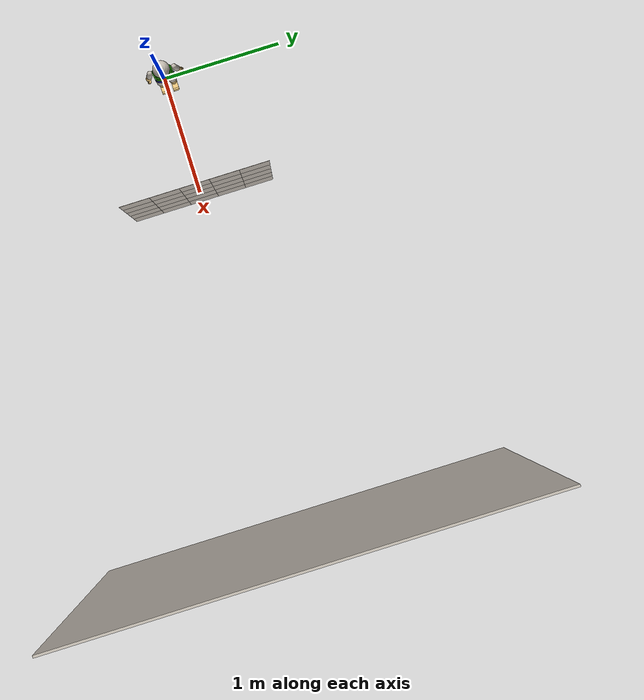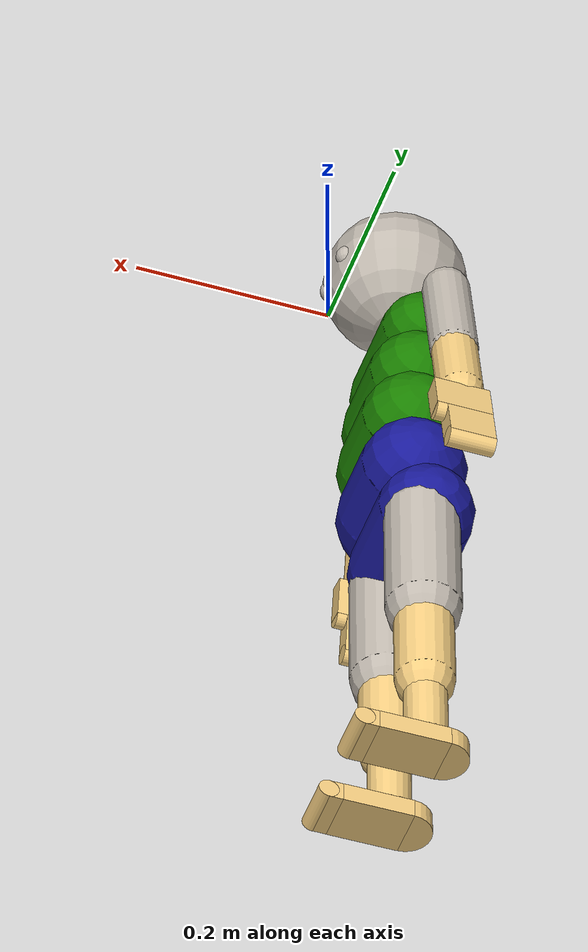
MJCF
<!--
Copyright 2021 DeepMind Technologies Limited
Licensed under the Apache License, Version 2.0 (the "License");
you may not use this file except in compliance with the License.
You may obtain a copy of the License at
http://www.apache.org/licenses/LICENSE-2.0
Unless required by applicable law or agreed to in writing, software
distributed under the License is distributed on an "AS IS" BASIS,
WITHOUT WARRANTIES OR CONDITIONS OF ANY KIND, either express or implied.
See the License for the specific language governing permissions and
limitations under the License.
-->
<mujoco model="MIMo">

    <compiler inertiafromgeom="true" angle="degree"/>

    <option gravity="0 0 0" timestep="0.005" iterations="50" tolerance="1e-10" solver="Newton" jacobian="dense" cone="elliptic" impratio="1.0"/>

    <size nconmax="1000" njmax="5000" nstack="10000000" nuser_cam="3"/>

    <visual>
        <map force="0.1" zfar="30" znear="0.005"/>
        <rgba haze="0.15 0.25 0.35 1"/>
        <quality shadowsize="0"/>
        <global offwidth="800" offheight="800"/>
    </visual>

    <!-- Import everything except the kinematic tree -->
	<include file="saccade_vergence_meta.xml"></include>

    <asset>
        <texture type="skybox" builtin="gradient" rgb1="0.3 0.5 0.7" rgb2="0 0 0" width="512" height="512"/>

        <!--background-->
        <texture name="background" type="2d" file="../../../data/background.png"/>
        <material name="background" texture="background"/>

        <!-- textures-->
        <texture name="texture0" type="cube" filefront="../../../data/texture0.png" rgb1="0 0 0"/>
        <texture name="texture1" type="cube" filefront="../../../data/texture1.png" rgb1="0 0 0"/>
        <texture name="texture2" type="cube" filefront="../../../data/texture2.png" rgb1="0 0 0"/>
        <texture name="texture3" type="cube" filefront="../../../data/texture3.png" rgb1="0 0 0"/>
        <texture name="texture4" type="cube" filefront="../../../data/texture4.png" rgb1="0 0 0"/>
        <texture name="texture5" type="cube" filefront="../../../data/texture5.png" rgb1="0 0 0"/>
        <texture name="texture6" type="cube" filefront="../../../data/texture6.png" rgb1="0 0 0"/>
        <texture name="texture7" type="cube" filefront="../../../data/texture7.png" rgb1="0 0 0"/>
        <texture name="texture8" type="cube" filefront="../../../data/texture8.png" rgb1="0 0 0"/>
        <texture name="texture9" type="cube" filefront="../../../data/texture9.png" rgb1="0 0 0"/>
        <texture name="texture10" type="cube" filefront="../../../data/texture10.png" rgb1="0 0 0"/>
        <texture name="texture11" type="cube" filefront="../../../data/texture11.png" rgb1="0 0 0"/>
        <texture name="texture12" type="cube" filefront="../../../data/texture12.png" rgb1="0 0 0"/>
        <texture name="texture13" type="cube" filefront="../../../data/texture13.png" rgb1="0 0 0"/>
        <texture name="texture14" type="cube" filefront="../../../data/texture14.png" rgb1="0 0 0"/>
        <texture name="texture15" type="cube" filefront="../../../data/texture15.png" rgb1="0 0 0"/>
        <texture name="texture16" type="cube" filefront="../../../data/texture16.png" rgb1="0 0 0"/>
        <texture name="texture17" type="cube" filefront="../../../data/texture17.png" rgb1="0 0 0"/>
        <texture name="texture18" type="cube" filefront="../../../data/texture18.png" rgb1="0 0 0"/>
        <texture name="texture19" type="cube" filefront="../../../data/texture19.png" rgb1="0 0 0"/>
        <texture name="texture20" type="cube" filefront="../../../data/texture20.png" rgb1="0 0 0"/>
        <texture name="texture21" type="cube" filefront="../../../data/texture21.png" rgb1="0 0 0"/>
        <texture name="texture22" type="cube" filefront="../../../data/texture22.png" rgb1="0 0 0"/>
        <texture name="texture23" type="cube" filefront="../../../data/texture23.png" rgb1="0 0 0"/>
        <texture name="texture24" type="cube" filefront="../../../data/texture24.png" rgb1="0 0 0"/>
        <texture name="texture25" type="cube" filefront="../../../data/texture25.png" rgb1="0 0 0"/>
        <texture name="texture26" type="cube" filefront="../../../data/texture26.png" rgb1="0 0 0"/>
        <texture name="texture27" type="cube" filefront="../../../data/texture27.png" rgb1="0 0 0"/>
        <texture name="texture28" type="cube" filefront="../../../data/texture28.png" rgb1="0 0 0"/>
        <texture name="texture29" type="cube" filefront="../../../data/texture29.png" rgb1="0 0 0"/>
        <texture name="texture30" type="cube" filefront="../../../data/texture30.png" rgb1="0 0 0"/>
        <texture name="texture31" type="cube" filefront="../../../data/texture31.png" rgb1="0 0 0"/>
        <texture name="texture32" type="cube" filefront="../../../data/texture32.png" rgb1="0 0 0"/>
        <texture name="texture33" type="cube" filefront="../../../data/texture33.png" rgb1="0 0 0"/>
        <texture name="texture34" type="cube" filefront="../../../data/texture34.png" rgb1="0 0 0"/>
        <texture name="texture35" type="cube" filefront="../../../data/texture35.png" rgb1="0 0 0"/>
        <texture name="texture36" type="cube" filefront="../../../data/texture36.png" rgb1="0 0 0"/>
        <texture name="texture37" type="cube" filefront="../../../data/texture37.png" rgb1="0 0 0"/>
        <texture name="texture38" type="cube" filefront="../../../data/texture38.png" rgb1="0 0 0"/>
        <texture name="texture39" type="cube" filefront="../../../data/texture39.png" rgb1="0 0 0"/>
        <texture name="texture40" type="cube" filefront="../../../data/texture40.png" rgb1="0 0 0"/>
        <texture name="texture41" type="cube" filefront="../../../data/texture41.png" rgb1="0 0 0"/>
        <texture name="texture42" type="cube" filefront="../../../data/texture42.png" rgb1="0 0 0"/>
        <texture name="texture43" type="cube" filefront="../../../data/texture43.png" rgb1="0 0 0"/>
        <texture name="texture44" type="cube" filefront="../../../data/texture44.png" rgb1="0 0 0"/>
        <texture name="texture45" type="cube" filefront="../../../data/texture45.png" rgb1="0 0 0"/>
        <texture name="texture46" type="cube" filefront="../../../data/texture46.png" rgb1="0 0 0"/>
        <texture name="texture47" type="cube" filefront="../../../data/texture47.png" rgb1="0 0 0"/>
        <texture name="texture48" type="cube" filefront="../../../data/texture48.png" rgb1="0 0 0"/>
        <texture name="texture49" type="cube" filefront="../../../data/texture49.png" rgb1="0 0 0"/>
        <texture name="texture50" type="cube" filefront="../../../data/texture50.png" rgb1="0 0 0"/>
        <texture name="texture51" type="cube" filefront="../../../data/texture51.png" rgb1="0 0 0"/>
        <texture name="texture52" type="cube" filefront="../../../data/texture52.png" rgb1="0 0 0"/>
        <texture name="texture53" type="cube" filefront="../../../data/texture53.png" rgb1="0 0 0"/>
        <texture name="texture54" type="cube" filefront="../../../data/texture54.png" rgb1="0 0 0"/>
        <texture name="texture55" type="cube" filefront="../../../data/texture55.png" rgb1="0 0 0"/>
        <texture name="texture56" type="cube" filefront="../../../data/texture56.png" rgb1="0 0 0"/>
        <texture name="texture57" type="cube" filefront="../../../data/texture57.png" rgb1="0 0 0"/>
        <texture name="texture58" type="cube" filefront="../../../data/texture58.png" rgb1="0 0 0"/>
        <texture name="texture59" type="cube" filefront="../../../data/texture59.png" rgb1="0 0 0"/>
        <texture name="texture60" type="cube" filefront="../../../data/texture60.png" rgb1="0 0 0"/>
        <texture name="texture61" type="cube" filefront="../../../data/texture61.png" rgb1="0 0 0"/>
        <texture name="texture62" type="cube" filefront="../../../data/texture62.png" rgb1="0 0 0"/>
        <texture name="texture63" type="cube" filefront="../../../data/texture63.png" rgb1="0 0 0"/>
        <texture name="texture64" type="cube" filefront="../../../data/texture64.png" rgb1="0 0 0"/>
        <texture name="texture65" type="cube" filefront="../../../data/texture65.png" rgb1="0 0 0"/>
        <texture name="texture66" type="cube" filefront="../../../data/texture66.png" rgb1="0 0 0"/>
        <texture name="texture67" type="cube" filefront="../../../data/texture67.png" rgb1="0 0 0"/>
        <texture name="texture68" type="cube" filefront="../../../data/texture68.png" rgb1="0 0 0"/>
        <texture name="texture69" type="cube" filefront="../../../data/texture69.png" rgb1="0 0 0"/>
        <texture name="texture70" type="cube" filefront="../../../data/texture70.png" rgb1="0 0 0"/>
        <texture name="texture71" type="cube" filefront="../../../data/texture71.png" rgb1="0 0 0"/>
        <texture name="texture72" type="cube" filefront="../../../data/texture72.png" rgb1="0 0 0"/>
        <texture name="texture73" type="cube" filefront="../../../data/texture73.png" rgb1="0 0 0"/>
        <texture name="texture74" type="cube" filefront="../../../data/texture74.png" rgb1="0 0 0"/>
        <texture name="texture75" type="cube" filefront="../../../data/texture75.png" rgb1="0 0 0"/>
        <texture name="texture76" type="cube" filefront="../../../data/texture76.png" rgb1="0 0 0"/>
        <texture name="texture77" type="cube" filefront="../../../data/texture77.png" rgb1="0 0 0"/>
        <texture name="texture78" type="cube" filefront="../../../data/texture78.png" rgb1="0 0 0"/>
        <texture name="texture79" type="cube" filefront="../../../data/texture79.png" rgb1="0 0 0"/>
        <texture name="texture80" type="cube" filefront="../../../data/texture80.png" rgb1="0 0 0"/>
        <texture name="texture81" type="cube" filefront="../../../data/texture81.png" rgb1="0 0 0"/>
        <texture name="texture82" type="cube" filefront="../../../data/texture82.png" rgb1="0 0 0"/>
        <texture name="texture83" type="cube" filefront="../../../data/texture83.png" rgb1="0 0 0"/>
        <texture name="texture84" type="cube" filefront="../../../data/texture84.png" rgb1="0 0 0"/>
        <texture name="texture85" type="cube" filefront="../../../data/texture85.png" rgb1="0 0 0"/>
        <texture name="texture86" type="cube" filefront="../../../data/texture86.png" rgb1="0 0 0"/>
        <texture name="texture87" type="cube" filefront="../../../data/texture87.png" rgb1="0 0 0"/>
        <texture name="texture88" type="cube" filefront="../../../data/texture88.png" rgb1="0 0 0"/>
        <texture name="texture89" type="cube" filefront="../../../data/texture89.png" rgb1="0 0 0"/>
        <texture name="texture90" type="cube" filefront="../../../data/texture90.png" rgb1="0 0 0"/>
        <texture name="texture91" type="cube" filefront="../../../data/texture91.png" rgb1="0 0 0"/>
        <texture name="texture92" type="cube" filefront="../../../data/texture92.png" rgb1="0 0 0"/>
        <texture name="texture93" type="cube" filefront="../../../data/texture93.png" rgb1="0 0 0"/>
        <texture name="texture94" type="cube" filefront="../../../data/texture94.png" rgb1="0 0 0"/>
        <texture name="texture95" type="cube" filefront="../../../data/texture95.png" rgb1="0 0 0"/>
        <texture name="texture96" type="cube" filefront="../../../data/texture96.png" rgb1="0 0 0"/>
        <texture name="texture97" type="cube" filefront="../../../data/texture97.png" rgb1="0 0 0"/>
        <texture name="texture98" type="cube" filefront="../../../data/texture98.png" rgb1="0 0 0"/>
        <texture name="texture99" type="cube" filefront="../../../data/texture99.png" rgb1="0 0 0"/>
        <texture name="texture100" type="cube" filefront="../../../data/texture100.png" rgb1="0 0 0"/>
        <texture name="texture101" type="cube" filefront="../../../data/texture101.png" rgb1="0 0 0"/>
        <texture name="texture102" type="cube" filefront="../../../data/texture102.png" rgb1="0 0 0"/>
        <texture name="texture103" type="cube" filefront="../../../data/texture103.png" rgb1="0 0 0"/>
        <texture name="texture104" type="cube" filefront="../../../data/texture104.png" rgb1="0 0 0"/>
        <texture name="texture105" type="cube" filefront="../../../data/texture105.png" rgb1="0 0 0"/>
        <texture name="texture106" type="cube" filefront="../../../data/texture106.png" rgb1="0 0 0"/>
        <texture name="texture107" type="cube" filefront="../../../data/texture107.png" rgb1="0 0 0"/>
        <texture name="texture108" type="cube" filefront="../../../data/texture108.png" rgb1="0 0 0"/>
        <texture name="texture109" type="cube" filefront="../../../data/texture109.png" rgb1="0 0 0"/>
        <texture name="texture110" type="cube" filefront="../../../data/texture110.png" rgb1="0 0 0"/>
        <texture name="texture111" type="cube" filefront="../../../data/texture111.png" rgb1="0 0 0"/>
        <texture name="texture112" type="cube" filefront="../../../data/texture112.png" rgb1="0 0 0"/>
        <texture name="texture113" type="cube" filefront="../../../data/texture113.png" rgb1="0 0 0"/>
        <texture name="texture114" type="cube" filefront="../../../data/texture114.png" rgb1="0 0 0"/>
        <texture name="texture115" type="cube" filefront="../../../data/texture115.png" rgb1="0 0 0"/>
        <texture name="texture116" type="cube" filefront="../../../data/texture116.png" rgb1="0 0 0"/>
        <texture name="texture117" type="cube" filefront="../../../data/texture117.png" rgb1="0 0 0"/>
        <texture name="texture118" type="cube" filefront="../../../data/texture118.png" rgb1="0 0 0"/>
        <texture name="texture119" type="cube" filefront="../../../data/texture119.png" rgb1="0 0 0"/>
        <texture name="texture120" type="cube" filefront="../../../data/texture120.png" rgb1="0 0 0"/>
        <texture name="texture121" type="cube" filefront="../../../data/texture121.png" rgb1="0 0 0"/>
        <texture name="texture122" type="cube" filefront="../../../data/texture122.png" rgb1="0 0 0"/>
        <texture name="texture123" type="cube" filefront="../../../data/texture123.png" rgb1="0 0 0"/>
        <texture name="texture124" type="cube" filefront="../../../data/texture124.png" rgb1="0 0 0"/>
        <texture name="texture125" type="cube" filefront="../../../data/texture125.png" rgb1="0 0 0"/>
        <texture name="texture126" type="cube" filefront="../../../data/texture126.png" rgb1="0 0 0"/>
        <texture name="texture127" type="cube" filefront="../../../data/texture127.png" rgb1="0 0 0"/>
        <texture name="texture128" type="cube" filefront="../../../data/texture128.png" rgb1="0 0 0"/>
        <texture name="texture129" type="cube" filefront="../../../data/texture129.png" rgb1="0 0 0"/>
        <texture name="texture130" type="cube" filefront="../../../data/texture130.png" rgb1="0 0 0"/>
        <texture name="texture131" type="cube" filefront="../../../data/texture131.png" rgb1="0 0 0"/>
        <texture name="texture132" type="cube" filefront="../../../data/texture132.png" rgb1="0 0 0"/>
        <texture name="texture133" type="cube" filefront="../../../data/texture133.png" rgb1="0 0 0"/>
        <texture name="texture134" type="cube" filefront="../../../data/texture134.png" rgb1="0 0 0"/>
        <texture name="texture135" type="cube" filefront="../../../data/texture135.png" rgb1="0 0 0"/>
        <texture name="texture136" type="cube" filefront="../../../data/texture136.png" rgb1="0 0 0"/>
        <texture name="texture137" type="cube" filefront="../../../data/texture137.png" rgb1="0 0 0"/>
        <texture name="texture138" type="cube" filefront="../../../data/texture138.png" rgb1="0 0 0"/>
        <texture name="texture139" type="cube" filefront="../../../data/texture139.png" rgb1="0 0 0"/>
        <texture name="texture140" type="cube" filefront="../../../data/texture140.png" rgb1="0 0 0"/>
        <texture name="texture141" type="cube" filefront="../../../data/texture141.png" rgb1="0 0 0"/>
        <texture name="texture142" type="cube" filefront="../../../data/texture142.png" rgb1="0 0 0"/>
        <texture name="texture143" type="cube" filefront="../../../data/texture143.png" rgb1="0 0 0"/>
        <texture name="texture144" type="cube" filefront="../../../data/texture144.png" rgb1="0 0 0"/>
        <texture name="texture145" type="cube" filefront="../../../data/texture145.png" rgb1="0 0 0"/>
        <texture name="texture146" type="cube" filefront="../../../data/texture146.png" rgb1="0 0 0"/>
        <texture name="texture147" type="cube" filefront="../../../data/texture147.png" rgb1="0 0 0"/>
        <texture name="texture148" type="cube" filefront="../../../data/texture148.png" rgb1="0 0 0"/>
        <texture name="texture149" type="cube" filefront="../../../data/texture149.png" rgb1="0 0 0"/>
        <texture name="texture150" type="cube" filefront="../../../data/texture150.png" rgb1="0 0 0"/>
        <texture name="texture151" type="cube" filefront="../../../data/texture151.png" rgb1="0 0 0"/>
        <texture name="texture152" type="cube" filefront="../../../data/texture152.png" rgb1="0 0 0"/>
        <texture name="texture153" type="cube" filefront="../../../data/texture153.png" rgb1="0 0 0"/>
        <texture name="texture154" type="cube" filefront="../../../data/texture154.png" rgb1="0 0 0"/>
        <texture name="texture155" type="cube" filefront="../../../data/texture155.png" rgb1="0 0 0"/>
        <texture name="texture156" type="cube" filefront="../../../data/texture156.png" rgb1="0 0 0"/>
        <texture name="texture157" type="cube" filefront="../../../data/texture157.png" rgb1="0 0 0"/>
        <texture name="texture158" type="cube" filefront="../../../data/texture158.png" rgb1="0 0 0"/>
        <texture name="texture159" type="cube" filefront="../../../data/texture159.png" rgb1="0 0 0"/>
        <texture name="texture160" type="cube" filefront="../../../data/texture160.png" rgb1="0 0 0"/>
        <texture name="texture161" type="cube" filefront="../../../data/texture161.png" rgb1="0 0 0"/>
        <texture name="texture162" type="cube" filefront="../../../data/texture162.png" rgb1="0 0 0"/>
        <texture name="texture163" type="cube" filefront="../../../data/texture163.png" rgb1="0 0 0"/>
        <texture name="texture164" type="cube" filefront="../../../data/texture164.png" rgb1="0 0 0"/>
        <texture name="texture165" type="cube" filefront="../../../data/texture165.png" rgb1="0 0 0"/>
        <texture name="texture166" type="cube" filefront="../../../data/texture166.png" rgb1="0 0 0"/>
        <texture name="texture167" type="cube" filefront="../../../data/texture167.png" rgb1="0 0 0"/>
        <texture name="texture168" type="cube" filefront="../../../data/texture168.png" rgb1="0 0 0"/>
        <texture name="texture169" type="cube" filefront="../../../data/texture169.png" rgb1="0 0 0"/>
        <texture name="texture170" type="cube" filefront="../../../data/texture170.png" rgb1="0 0 0"/>
        <texture name="texture171" type="cube" filefront="../../../data/texture171.png" rgb1="0 0 0"/>
        <texture name="texture172" type="cube" filefront="../../../data/texture172.png" rgb1="0 0 0"/>
        <texture name="texture173" type="cube" filefront="../../../data/texture173.png" rgb1="0 0 0"/>
        <texture name="texture174" type="cube" filefront="../../../data/texture174.png" rgb1="0 0 0"/>
        <texture name="texture175" type="cube" filefront="../../../data/texture175.png" rgb1="0 0 0"/>
        <texture name="texture176" type="cube" filefront="../../../data/texture176.png" rgb1="0 0 0"/>
        <texture name="texture177" type="cube" filefront="../../../data/texture177.png" rgb1="0 0 0"/>
        <texture name="texture178" type="cube" filefront="../../../data/texture178.png" rgb1="0 0 0"/>
        <texture name="texture179" type="cube" filefront="../../../data/texture179.png" rgb1="0 0 0"/>
        <texture name="texture180" type="cube" filefront="../../../data/texture180.png" rgb1="0 0 0"/>
        <texture name="texture181" type="cube" filefront="../../../data/texture181.png" rgb1="0 0 0"/>
        <texture name="texture182" type="cube" filefront="../../../data/texture182.png" rgb1="0 0 0"/>
        <texture name="texture183" type="cube" filefront="../../../data/texture183.png" rgb1="0 0 0"/>
        <texture name="texture184" type="cube" filefront="../../../data/texture184.png" rgb1="0 0 0"/>
        <texture name="texture185" type="cube" filefront="../../../data/texture185.png" rgb1="0 0 0"/>
        <texture name="texture186" type="cube" filefront="../../../data/texture186.png" rgb1="0 0 0"/>
        <texture name="texture187" type="cube" filefront="../../../data/texture187.png" rgb1="0 0 0"/>
        <texture name="texture188" type="cube" filefront="../../../data/texture188.png" rgb1="0 0 0"/>
        <texture name="texture189" type="cube" filefront="../../../data/texture189.png" rgb1="0 0 0"/>
        <texture name="texture190" type="cube" filefront="../../../data/texture190.png" rgb1="0 0 0"/>
        <texture name="texture191" type="cube" filefront="../../../data/texture191.png" rgb1="0 0 0"/>
        <texture name="texture192" type="cube" filefront="../../../data/texture192.png" rgb1="0 0 0"/>
        <texture name="texture193" type="cube" filefront="../../../data/texture193.png" rgb1="0 0 0"/>
        <texture name="texture194" type="cube" filefront="../../../data/texture194.png" rgb1="0 0 0"/>
        <texture name="texture195" type="cube" filefront="../../../data/texture195.png" rgb1="0 0 0"/>
        <texture name="texture196" type="cube" filefront="../../../data/texture196.png" rgb1="0 0 0"/>
        <texture name="texture197" type="cube" filefront="../../../data/texture197.png" rgb1="0 0 0"/>
        <texture name="texture198" type="cube" filefront="../../../data/texture198.png" rgb1="0 0 0"/>
        <texture name="texture199" type="cube" filefront="../../../data/texture199.png" rgb1="0 0 0"/>
        <texture name="texture200" type="cube" filefront="../../../data/texture200.png" rgb1="0 0 0"/>
        <texture name="texture201" type="cube" filefront="../../../data/texture201.png" rgb1="0 0 0"/>
        <texture name="texture202" type="cube" filefront="../../../data/texture202.png" rgb1="0 0 0"/>
        <texture name="texture203" type="cube" filefront="../../../data/texture203.png" rgb1="0 0 0"/>
        <texture name="texture204" type="cube" filefront="../../../data/texture204.png" rgb1="0 0 0"/>
        <texture name="texture205" type="cube" filefront="../../../data/texture205.png" rgb1="0 0 0"/>
        <texture name="texture206" type="cube" filefront="../../../data/texture206.png" rgb1="0 0 0"/>
        <texture name="texture207" type="cube" filefront="../../../data/texture207.png" rgb1="0 0 0"/>
        <texture name="texture208" type="cube" filefront="../../../data/texture208.png" rgb1="0 0 0"/>
        <texture name="texture209" type="cube" filefront="../../../data/texture209.png" rgb1="0 0 0"/>
        <texture name="texture210" type="cube" filefront="../../../data/texture210.png" rgb1="0 0 0"/>
        <texture name="texture211" type="cube" filefront="../../../data/texture211.png" rgb1="0 0 0"/>
        <texture name="texture212" type="cube" filefront="../../../data/texture212.png" rgb1="0 0 0"/>
        <texture name="texture213" type="cube" filefront="../../../data/texture213.png" rgb1="0 0 0"/>
        <texture name="texture214" type="cube" filefront="../../../data/texture214.png" rgb1="0 0 0"/>
        <texture name="texture215" type="cube" filefront="../../../data/texture215.png" rgb1="0 0 0"/>
        <texture name="texture216" type="cube" filefront="../../../data/texture216.png" rgb1="0 0 0"/>
        <texture name="texture217" type="cube" filefront="../../../data/texture217.png" rgb1="0 0 0"/>
        <texture name="texture218" type="cube" filefront="../../../data/texture218.png" rgb1="0 0 0"/>
        <texture name="texture219" type="cube" filefront="../../../data/texture219.png" rgb1="0 0 0"/>
        <texture name="texture220" type="cube" filefront="../../../data/texture220.png" rgb1="0 0 0"/>
        <texture name="texture221" type="cube" filefront="../../../data/texture221.png" rgb1="0 0 0"/>
        <texture name="texture222" type="cube" filefront="../../../data/texture222.png" rgb1="0 0 0"/>
        <texture name="texture223" type="cube" filefront="../../../data/texture223.png" rgb1="0 0 0"/>
        <texture name="texture224" type="cube" filefront="../../../data/texture224.png" rgb1="0 0 0"/>
        <texture name="texture225" type="cube" filefront="../../../data/texture225.png" rgb1="0 0 0"/>
        <texture name="texture226" type="cube" filefront="../../../data/texture226.png" rgb1="0 0 0"/>
        <texture name="texture227" type="cube" filefront="../../../data/texture227.png" rgb1="0 0 0"/>
        <texture name="texture228" type="cube" filefront="../../../data/texture228.png" rgb1="0 0 0"/>
        <texture name="texture229" type="cube" filefront="../../../data/texture229.png" rgb1="0 0 0"/>
        <texture name="texture230" type="cube" filefront="../../../data/texture230.png" rgb1="0 0 0"/>
        <texture name="texture231" type="cube" filefront="../../../data/texture231.png" rgb1="0 0 0"/>
        <texture name="texture232" type="cube" filefront="../../../data/texture232.png" rgb1="0 0 0"/>
        <texture name="texture233" type="cube" filefront="../../../data/texture233.png" rgb1="0 0 0"/>
        <texture name="texture234" type="cube" filefront="../../../data/texture234.png" rgb1="0 0 0"/>
        <texture name="texture235" type="cube" filefront="../../../data/texture235.png" rgb1="0 0 0"/>
        <texture name="texture236" type="cube" filefront="../../../data/texture236.png" rgb1="0 0 0"/>
        <texture name="texture237" type="cube" filefront="../../../data/texture237.png" rgb1="0 0 0"/>
        <texture name="texture238" type="cube" filefront="../../../data/texture238.png" rgb1="0 0 0"/>
        <texture name="texture239" type="cube" filefront="../../../data/texture239.png" rgb1="0 0 0"/>
        <texture name="texture240" type="cube" filefront="../../../data/texture240.png" rgb1="0 0 0"/>
        <texture name="texture241" type="cube" filefront="../../../data/texture241.png" rgb1="0 0 0"/>
        <texture name="texture242" type="cube" filefront="../../../data/texture242.png" rgb1="0 0 0"/>
        <texture name="texture243" type="cube" filefront="../../../data/texture243.png" rgb1="0 0 0"/>
        <texture name="texture244" type="cube" filefront="../../../data/texture244.png" rgb1="0 0 0"/>
        <texture name="texture245" type="cube" filefront="../../../data/texture245.png" rgb1="0 0 0"/>
        <texture name="texture246" type="cube" filefront="../../../data/texture246.png" rgb1="0 0 0"/>
        <texture name="texture247" type="cube" filefront="../../../data/texture247.png" rgb1="0 0 0"/>
        <texture name="texture248" type="cube" filefront="../../../data/texture248.png" rgb1="0 0 0"/>
        <texture name="texture249" type="cube" filefront="../../../data/texture249.png" rgb1="0 0 0"/>
        <texture name="texture250" type="cube" filefront="../../../data/texture250.png" rgb1="0 0 0"/>
        <texture name="texture251" type="cube" filefront="../../../data/texture251.png" rgb1="0 0 0"/>
        <texture name="texture252" type="cube" filefront="../../../data/texture252.png" rgb1="0 0 0"/>
        <texture name="texture253" type="cube" filefront="../../../data/texture253.png" rgb1="0 0 0"/>
        <texture name="texture254" type="cube" filefront="../../../data/texture254.png" rgb1="0 0 0"/>
        <texture name="texture255" type="cube" filefront="../../../data/texture255.png" rgb1="0 0 0"/>
        <texture name="texture256" type="cube" filefront="../../../data/texture256.png" rgb1="0 0 0"/>
        <texture name="texture257" type="cube" filefront="../../../data/texture257.png" rgb1="0 0 0"/>
        <texture name="texture258" type="cube" filefront="../../../data/texture258.png" rgb1="0 0 0"/>
        <texture name="texture259" type="cube" filefront="../../../data/texture259.png" rgb1="0 0 0"/>
        <texture name="texture260" type="cube" filefront="../../../data/texture260.png" rgb1="0 0 0"/>
        <texture name="texture261" type="cube" filefront="../../../data/texture261.png" rgb1="0 0 0"/>
        <texture name="texture262" type="cube" filefront="../../../data/texture262.png" rgb1="0 0 0"/>
        <texture name="texture263" type="cube" filefront="../../../data/texture263.png" rgb1="0 0 0"/>
        <texture name="texture264" type="cube" filefront="../../../data/texture264.png" rgb1="0 0 0"/>
        <texture name="texture265" type="cube" filefront="../../../data/texture265.png" rgb1="0 0 0"/>
        <texture name="texture266" type="cube" filefront="../../../data/texture266.png" rgb1="0 0 0"/>
        <texture name="texture267" type="cube" filefront="../../../data/texture267.png" rgb1="0 0 0"/>
        <texture name="texture268" type="cube" filefront="../../../data/texture268.png" rgb1="0 0 0"/>
        <texture name="texture269" type="cube" filefront="../../../data/texture269.png" rgb1="0 0 0"/>
        <texture name="texture270" type="cube" filefront="../../../data/texture270.png" rgb1="0 0 0"/>
        <texture name="texture271" type="cube" filefront="../../../data/texture271.png" rgb1="0 0 0"/>
        <texture name="texture272" type="cube" filefront="../../../data/texture272.png" rgb1="0 0 0"/>
        <texture name="texture273" type="cube" filefront="../../../data/texture273.png" rgb1="0 0 0"/>
        <texture name="texture274" type="cube" filefront="../../../data/texture274.png" rgb1="0 0 0"/>
        <texture name="texture275" type="cube" filefront="../../../data/texture275.png" rgb1="0 0 0"/>
        <texture name="texture276" type="cube" filefront="../../../data/texture276.png" rgb1="0 0 0"/>
        <texture name="texture277" type="cube" filefront="../../../data/texture277.png" rgb1="0 0 0"/>
        <texture name="texture278" type="cube" filefront="../../../data/texture278.png" rgb1="0 0 0"/>
        <texture name="texture279" type="cube" filefront="../../../data/texture279.png" rgb1="0 0 0"/>
        <texture name="texture280" type="cube" filefront="../../../data/texture280.png" rgb1="0 0 0"/>
        <texture name="texture281" type="cube" filefront="../../../data/texture281.png" rgb1="0 0 0"/>
        <texture name="texture282" type="cube" filefront="../../../data/texture282.png" rgb1="0 0 0"/>
        <texture name="texture283" type="cube" filefront="../../../data/texture283.png" rgb1="0 0 0"/>
        <texture name="texture284" type="cube" filefront="../../../data/texture284.png" rgb1="0 0 0"/>
        <texture name="texture285" type="cube" filefront="../../../data/texture285.png" rgb1="0 0 0"/>
        <texture name="texture286" type="cube" filefront="../../../data/texture286.png" rgb1="0 0 0"/>
        <texture name="texture287" type="cube" filefront="../../../data/texture287.png" rgb1="0 0 0"/>
        <texture name="texture288" type="cube" filefront="../../../data/texture288.png" rgb1="0 0 0"/>
        <texture name="texture289" type="cube" filefront="../../../data/texture289.png" rgb1="0 0 0"/>
        <texture name="texture290" type="cube" filefront="../../../data/texture290.png" rgb1="0 0 0"/>
        <texture name="texture291" type="cube" filefront="../../../data/texture291.png" rgb1="0 0 0"/>
        <texture name="texture292" type="cube" filefront="../../../data/texture292.png" rgb1="0 0 0"/>
        <texture name="texture293" type="cube" filefront="../../../data/texture293.png" rgb1="0 0 0"/>
        <texture name="texture294" type="cube" filefront="../../../data/texture294.png" rgb1="0 0 0"/>
        <texture name="texture295" type="cube" filefront="../../../data/texture295.png" rgb1="0 0 0"/>
        <texture name="texture296" type="cube" filefront="../../../data/texture296.png" rgb1="0 0 0"/>
        <texture name="texture297" type="cube" filefront="../../../data/texture297.png" rgb1="0 0 0"/>
        <texture name="texture298" type="cube" filefront="../../../data/texture298.png" rgb1="0 0 0"/>
        <texture name="texture299" type="cube" filefront="../../../data/texture299.png" rgb1="0 0 0"/>

        <material name="target00" texture="texture0"/>
        <material name="target01" texture="texture1"/>
        <material name="target02" texture="texture2"/>
        <material name="target03" texture="texture3"/>
        <material name="target04" texture="texture4"/>
        <material name="target10" texture="texture5"/>
        <material name="target11" texture="texture6"/>
        <material name="target12" texture="texture7"/>
        <material name="target13" texture="texture8"/>
        <material name="target14" texture="texture9"/>
        <material name="target20" texture="texture10"/>
        <material name="target21" texture="texture11"/>
        <material name="target22" texture="texture12"/>
        <material name="target23" texture="texture13"/>
        <material name="target24" texture="texture14"/>
        <material name="target30" texture="texture15"/>
        <material name="target31" texture="texture16"/>
        <material name="target32" texture="texture17"/>
        <material name="target33" texture="texture18"/>
        <material name="target34" texture="texture19"/>
        <material name="target40" texture="texture20"/>
        <material name="target41" texture="texture21"/>
        <material name="target42" texture="texture22"/>
        <material name="target43" texture="texture23"/>
        <material name="target44" texture="texture24"/>
    </asset>

    <equality>
        <weld body1="head"/>
        <weld body1="upper_body"/>
        <weld body1="lower_body"/>
        <weld body1="right_upper_arm"/>
        <weld body1="right_hand"/>
        <weld body1="left_upper_arm"/>
        <weld body1="left_hand"/>
        <weld body1="left_upper_leg"/>
        <weld body1="left_foot"/>
        <weld body1="right_upper_leg"/>
        <weld body1="right_foot"/>
    </equality>

    <worldbody>

        <light directional="false" diffuse=".4 .4 .4" specular="0 0 0" pos="0 0 10" dir="0 0 -1" castshadow="false"/>
        <light mode="targetbodycom" target="upper_body" directional="false" diffuse=".5 .5 .5" specular="0.3 0.3 0.3" pos="0 0 5.0" dir="0 0 -1"/>
        <light mode="targetbodycom" target="upper_body" directional="false" diffuse=".5 .5 .5" specular="0.3 0.3 0.3" pos="5.0 0 0.5" dir="-1 0 0"/>
        <light mode="targetbodycom" target="upper_body" directional="false" diffuse=".3 .3 .3" specular="0.3 0.3 0.3" pos="0 5 0.5" dir="0 -1 0"/>
        <light mode="targetbodycom" target="upper_body" directional="false" diffuse=".3 .3 .3" specular="0.3 0.3 0.3" pos="0 -5 0.5" dir="0 1 0"/>

        <!-- Camera behind MIMo as an outside observer of the sciene -->
        <camera name="observer" mode="fixed" fovy="40" pos="-0.1 0 0.2" euler="-90 -90 0"/>

        <!-- The location and orientation of the base model can be set using this body -->
		<body name="mimo_location" pos="-0.08125 0 -0.302" euler="0 0 0">      <!--MIMo positioned such that his eye cameras are at x,z=0-->
			<freejoint/>
			<include file="saccade_vergence_model.xml"></include> <!-- Import the actual model-->
		</body>

        <!-- Background -->
        <body name="background" pos="4 0 0">
			<geom type="box" material="background" size="2 2 .01" pos="0 0 0" euler="90 -90 0"/>
		</body>

        <!-- Target textures -->

        <!-- First row -->
        <body name="target00" mocap="true" pos="1.0 -0.5 -0.5">
			<geom type="box" material="target00" size="0.125 0.125 .001" pos="0 0 0" euler="90 -90 0"/>
		</body>

        <body name="target01" mocap="true" pos="1.0 -0.25 -0.5">
			<geom type="box" material="target01" size="0.125 0.125 .001" pos="0 0 0" euler="90 -90 0"/>
		</body>

        <body name="target02" mocap="true" pos="1.0 0.0 -0.5">
			<geom type="box" material="target02" size="0.125 0.125 .001" pos="0 0 0" euler="90 -90 0"/>
		</body>

        <body name="target03" mocap="true" pos="1.0 0.25 -0.5">
			<geom type="box" material="target03" size="0.125 0.125 .001" pos="0 0 0" euler="90 -90 0"/>
		</body>

        <body name="target04" mocap="true" pos="1.0 0.5 -0.5">
			<geom type="box" material="target04" size="0.125 0.125 .001" pos="0 0 0" euler="90 -90 0"/>
		</body>

        <!-- Second row -->
        <body name="target10" mocap="true" pos="1.0 -0.5 -0.25">
			<geom type="box" material="target10" size="0.125 0.125 .001" pos="0 0 0" euler="90 -90 0"/>
		</body>

        <body name="target11" mocap="true" pos="1.0 -0.25 -0.25">
			<geom type="box" material="target11" size="0.125 0.125 .001" pos="0 0 0" euler="90 -90 0"/>
		</body>

        <body name="target12" mocap="true" pos="1.0 0.0 -0.25">
			<geom type="box" material="target12" size="0.125 0.125 .001" pos="0 0 0" euler="90 -90 0"/>
		</body>

        <body name="target13" mocap="true" pos="1.0 0.25 -0.25">
			<geom type="box" material="target13" size="0.125 0.125 .001" pos="0 0 0" euler="90 -90 0"/>
		</body>

        <body name="target14" mocap="true" pos="1.0 0.5 -0.25">
			<geom type="box" material="target14" size="0.125 0.125 .001" pos="0 0 0" euler="90 -90 0"/>
		</body>

        <!-- Third row -->
        <body name="target20" mocap="true" pos="1.0 -0.5 0.0">
			<geom type="box" material="target20" size="0.125 0.125 .001" pos="0 0 0" euler="90 -90 0"/>
		</body>

        <body name="target21" mocap="true" pos="1.0 -0.25 0.0">
			<geom type="box" material="target21" size="0.125 0.125 .001" pos="0 0 0" euler="90 -90 0"/>
		</body>

        <body name="target22" mocap="true" pos="1.0 0.0 0.0">
			<geom type="box" material="target22" size="0.125 0.125 .001" pos="0 0 0" euler="90 -90 0"/>
		</body>

        <body name="target23" mocap="true" pos="1.0 0.25 0.0">
			<geom type="box" material="target23" size="0.125 0.125 .001" pos="0 0 0" euler="90 -90 0"/>
		</body>

        <body name="target24" mocap="true" pos="1.0 0.5 0.0">
			<geom type="box" material="target24" size="0.125 0.125 .001" pos="0 0 0" euler="90 -90 0"/>
		</body>

        <!-- Fourth row -->
        <body name="target30" mocap="true" pos="1.0 -0.5 0.25">
			<geom type="box" material="target30" size="0.125 0.125 .001" pos="0 0 0" euler="90 -90 0"/>
		</body>

        <body name="target31" mocap="true" pos="1.0 -0.25 0.25">
			<geom type="box" material="target31" size="0.125 0.125 .001" pos="0 0 0" euler="90 -90 0"/>
		</body>

        <body name="target32" mocap="true" pos="1.0 0.0 0.25">
			<geom type="box" material="target32" size="0.125 0.125 .001" pos="0 0 0" euler="90 -90 0"/>
		</body>

        <body name="target33" mocap="true" pos="1.0 0.25 0.25">
			<geom type="box" material="target33" size="0.125 0.125 .001" pos="0 0 0" euler="90 -90 0"/>
		</body>

        <body name="target34" mocap="true" pos="1.0 0.5 0.25">
			<geom type="box" material="target34" size="0.125 0.125 .001" pos="0 0 0" euler="90 -90 0"/>
		</body>

        <!-- Fifth row -->
        <body name="target40" mocap="true" pos="1.0 -0.5 0.5">
			<geom type="box" material="target40" size="0.125 0.125 .001" pos="0 0 0" euler="90 -90 0"/>
		</body>

        <body name="target41" mocap="true" pos="1.0 -0.25 0.5">
			<geom type="box" material="target41" size="0.125 0.125 .001" pos="0 0 0" euler="90 -90 0"/>
		</body>

        <body name="target42" mocap="true" pos="1.0 0.0 0.5">
			<geom type="box" material="target42" size="0.125 0.125 .001" pos="0 0 0" euler="90 -90 0"/>
		</body>

        <body name="target43" mocap="true" pos="1.0 0.25 0.5">
			<geom type="box" material="target43" size="0.125 0.125 .001" pos="0 0 0" euler="90 -90 0"/>
		</body>

        <body name="target44" mocap="true" pos="1.0 0.5 0.5">
			<geom type="box" material="target44" size="0.125 0.125 .001" pos="0 0 0" euler="90 -90 0"/>
		</body>

    </worldbody>
</mujoco>

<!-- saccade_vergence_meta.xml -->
<mujoco model="MIMo">

	<default>
		<default class="mimo">
        	<joint limited="true" damping="1" stiffness="1" armature="0.01" solimplimit="0.98 0.99 0.001 .5 1" solreflimit="0.02 1"/>
        	<geom condim="3" material="skin" density="985" friction="1 0.005 0.0002" solimp="0.95 0.99 0.001 0.5 1" solref="0.005 1"/>
        	<motor ctrlrange="-1 1" ctrllimited="true" forcelimited="true"/>
		</default>
    </default>

    <asset>

		<texture name="tex_head_default" type="cube" fileright="tex/head_front.png" fileleft="tex/head_back.png" fileup="tex/head_left.png" filedown="tex/head_right.png" filefront="tex/head_top.png" rgb1="0.95 .8 .5"/>
		<texture name="tex_head_happy" type="cube" fileright="tex/head_front_happy.png" fileleft="tex/head_back.png" fileup="tex/head_left.png" filedown="tex/head_right.png" filefront="tex/head_top.png" rgb1="0.95 .8 .5"/>
		<texture name="tex_head_sad" type="cube" fileright="tex/head_front_sad.png" fileleft="tex/head_back.png" fileup="tex/head_left.png" filedown="tex/head_right.png" filefront="tex/head_top.png" rgb1="0.95 .8 .5"/>
		<texture name="tex_head_surprised" type="cube" fileright="tex/head_front_surprised.png" fileleft="tex/head_back.png" fileup="tex/head_left.png" filedown="tex/head_right.png" filefront="tex/head_top.png" rgb1="0.95 .8 .5"/>
		<texture name="tex_head_angry" type="cube" fileright="tex/head_front_angry.png" fileleft="tex/head_back.png" fileup="tex/head_left.png" filedown="tex/head_right.png" filefront="tex/head_top.png" rgb1="0.95 .8 .5"/>
		<texture name="tex_head_disgusted" type="cube" fileright="tex/head_front_disgusted.png" fileleft="tex/head_back.png" fileup="tex/head_left.png" filedown="tex/head_right.png" filefront="tex/head_top.png" rgb1="0.95 .8 .5"/>
		<texture name="tex_head_scared" type="cube" fileright="tex/head_front_scared.png" fileleft="tex/head_back.png" fileup="tex/head_left.png" filedown="tex/head_right.png" filefront="tex/head_top.png" rgb1="0.95 .8 .5"/>
		<texture name="tex_top_sleeve" type="cube" fileright="tex/sleeve_right.png" fileleft="tex/sleeve_left.png" fileup="tex/sleeve_up.png" filedown="tex/sleeve_down.png" filefront="tex/sleeve_front.png" fileback="tex/sleeve_back.png" rgb1="0.95 .8 .5"/>
		<texture name="tex_pants_leg" type="cube" fileright="tex/leg_right.png" fileleft="tex/leg_left.png" fileup="tex/leg_up.png" filedown="tex/leg_down.png" filefront="tex/leg_front.png" fileback="tex/leg_back.png" rgb1="0.95 .8 .5"/>
		<texture name="tex_eye_left" type="cube" fileright="tex/eye_pupil_left.png" rgb1="1 1 1"/>
		<texture name="tex_eye_right" type="cube" fileright="tex/eye_pupil_right.png" rgb1="1 1 1"/>

		<material name="skin" rgba="0.95 0.8 0.5 1" specular=".15" shininess=".7"/>
		<material name="buttons" rgba=".05 .05 .05 1" specular=".9" shininess=".9"/>
		<material name="head" texture="tex_head_default" texuniform="true" specular=".0" shininess=".0"/>
		<material name="top_up" rgba=".1 .5 0.0 1" specular=".0" shininess=".0"/>
		<material name="top_middle" rgba=".1 .5 0.0 1" specular=".0" shininess=".0"/>
		<material name="top_down" rgba=".1 .5 0.0 1" specular=".0" shininess=".0"/>
		<material name="top_sleeve" texture="tex_top_sleeve" texuniform="true" specular=".0" shininess=".0"/>
		<material name="pants_up" rgba="0.1 0.1 0.6 1" specular=".0" shininess=".0"/>
		<material name="pants_down" rgba="0.1 0.1 0.6 1" specular=".0" shininess=".0"/>
		<material name="pants_leg" texture="tex_pants_leg" texuniform="true" specular=".0" shininess=".0"/>
		<material name="eye_left" texture="tex_eye_left" texuniform="true" specular=".0" shininess=".0"/>
		<material name="eye_right" texture="tex_eye_right" texuniform="true" specular=".0" shininess=".0"/>

    </asset>

	<!-- Internal contacts should not have friction to reduce "getting stuck" on ourselves-->
	<contact>
		<pair geom1="lb" geom2="ub1" condim="1"/>
	</contact>

	<tendon>
		<fixed class="mimo" name="hip_bend" limited="true" range="-.01 .01">
			<joint joint="robot:hip_bend1" coef="1"/>
			<joint joint="robot:hip_bend2" coef="-1"/>
		</fixed>
		<fixed class="mimo" name="hip_rotation" limited="true" range="-.01 .01">
			<joint joint="robot:hip_rot1" coef="1"/>
			<joint joint="robot:hip_rot2" coef="-1"/>
		</fixed>
		<fixed class="mimo" name="hip_lean" limited="true" range="-.01 .01">
			<joint joint="robot:hip_lean1" coef="1"/>
			<joint joint="robot:hip_lean2" coef="-.5"/>
		</fixed>
		<fixed class="mimo" name="head_limits1" limited="true" range="-2.1 2.1">
			<joint joint="robot:head_swivel" coef="1"/>
			<joint joint="robot:head_tilt_side" coef="1"/>
		</fixed>
		<fixed class="mimo" name="head_limits2" limited="true" range="-2.1 2.1">
			<joint joint="robot:head_tilt" coef="1"/>
			<joint joint="robot:head_tilt_side" coef="1"/>
		</fixed>
		<fixed class="mimo" name="head_limits3" limited="true" range="-2.1 2.1">
			<joint joint="robot:head_swivel" coef="1"/>
			<joint joint="robot:head_tilt" coef="1"/>
		</fixed>
		<fixed class="mimo" name="head_limits1_sym" limited="true" range="-2.1 2.1">
			<joint joint="robot:head_swivel" coef="1"/>
			<joint joint="robot:head_tilt_side" coef="-1"/>
		</fixed>
		<fixed class="mimo" name="head_limits2_sym" limited="true" range="-2.1 2.1">
			<joint joint="robot:head_tilt" coef="1"/>
			<joint joint="robot:head_tilt_side" coef="-1"/>
		</fixed>
		<fixed class="mimo" name="head_limits3_sym" limited="true" range="-2.1 2.1">
			<joint joint="robot:head_swivel" coef="1"/>
			<joint joint="robot:head_tilt" coef="-1"/>
		</fixed>
	</tendon>

	<sensor>
		<accelerometer name="vestibular_acc" site="vestibular"/>
		<gyro name="vestibular_gyro" site="vestibular"/>

		<torque name="proprio:neck" site="torque_neck"/>
		<torque name="proprio:left_eye" site="torque_left_eye"/>
		<torque name="proprio:right_eye" site="torque_right_eye"/>

		<torque name="proprio:trunk_upper" site="torque_ub"/>
		<torque name="proprio:trunk_lower" site="torque_lb"/>

		<torque name="proprio:right_shoulder" site="torque_right_shoulder"/>
		<torque name="proprio:right_elbow" site="torque_right_elbow"/>
		<torque name="proprio:right_wrist" site="torque_right_wrist"/>
		<torque name="proprio:right_fingers" site="torque_right_fingers"/>

		<torque name="proprio:left_shoulder" site="torque_left_shoulder"/>
		<torque name="proprio:left_elbow" site="torque_left_elbow"/>
		<torque name="proprio:left_wrist" site="torque_left_wrist"/>
		<torque name="proprio:left_fingers" site="torque_left_fingers"/>

		<torque name="proprio:right_hip" site="torque_right_hip"/>
		<torque name="proprio:right_knee" site="torque_right_knee"/>
		<torque name="proprio:right_ankle" site="torque_right_ankle"/>
		<torque name="proprio:right_toes" site="torque_right_toes"/>

		<torque name="proprio:left_hip" site="torque_left_hip"/>
		<torque name="proprio:left_knee" site="torque_left_knee"/>
		<torque name="proprio:left_ankle" site="torque_left_ankle"/>
		<torque name="proprio:left_toes" site="torque_left_toes"/>
	</sensor>

    <actuator>
		<!-- No actuators in the model: eyes moved manually -->
	</actuator>

</mujoco>
